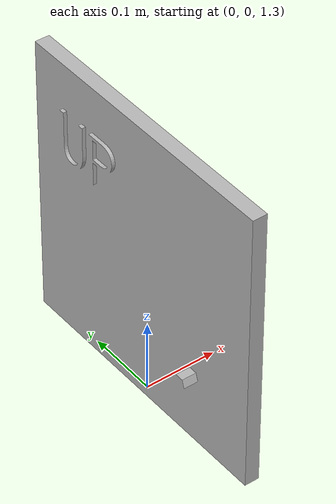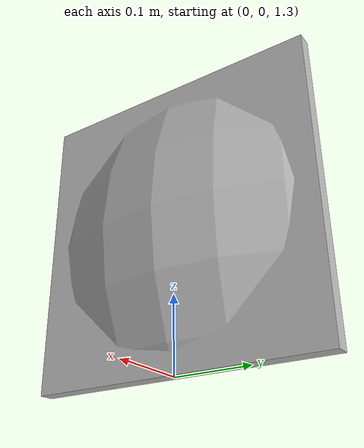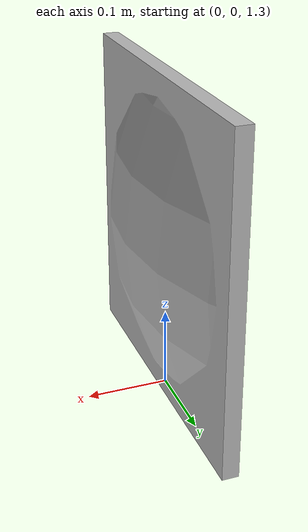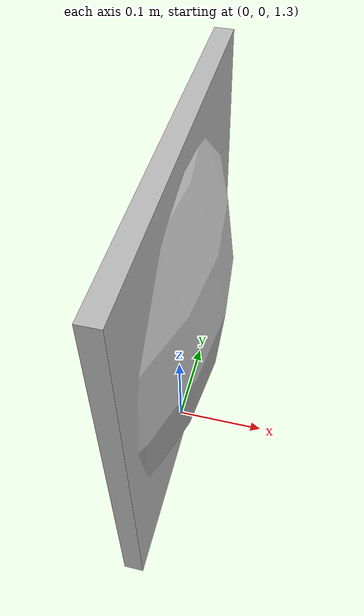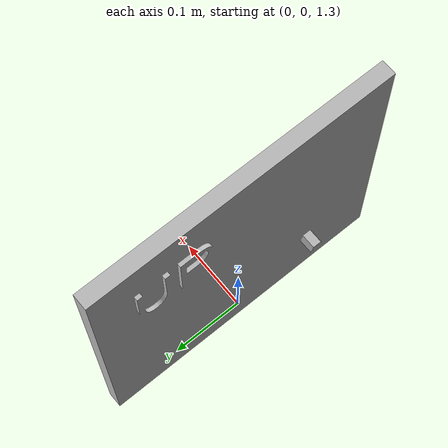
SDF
<?xml version='1.0'?>
<sdf version='1.6'>

              <model name="reader_model">
                <link name="link">
                  <pose>0 0 1.5 0 0 0</pose>

                  <collision name="reader_collision">
                    <geometry>
                    <mesh>
                      <uri>model://antenna/antenna.stl</uri>
                      <scale>1 1 1</scale>
                    </mesh>
                    </geometry>
                  </collision>

                  <visual name="reader_visual">
                  <geometry>
                    <mesh>
                      <uri>model://antenna/antenna.stl</uri>
                      <scale>1 1 1</scale>
                    </mesh>
                  </geometry>
                  </visual>

                  <sensor name='my_reader' type='rfid'>
                        <topic>/reader_topic_name</topic>
                        <always_on>1</always_on>
                  </sensor>
                </link>
              </model>

</sdf>
